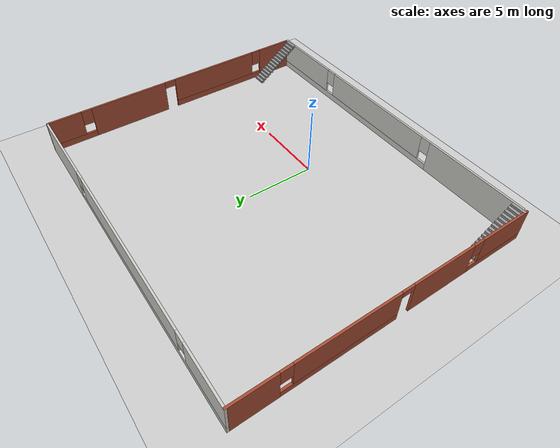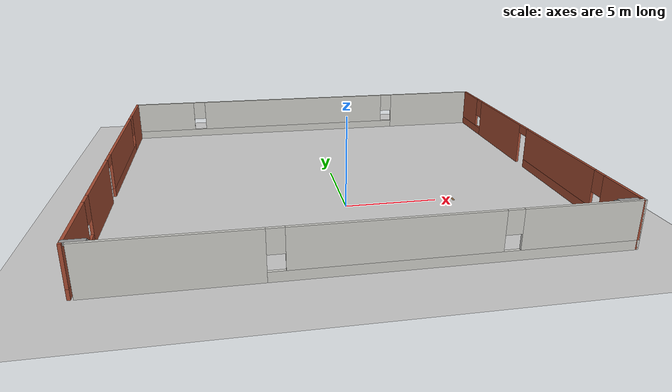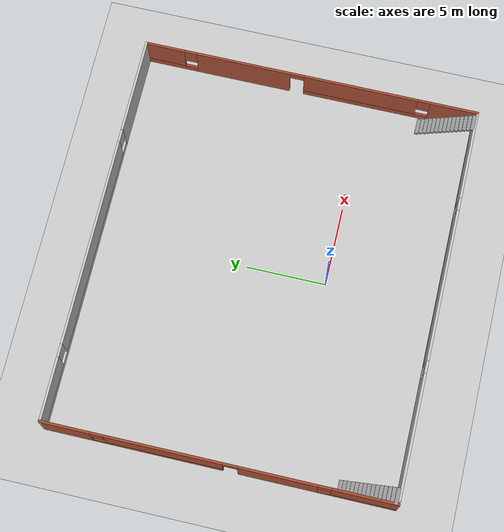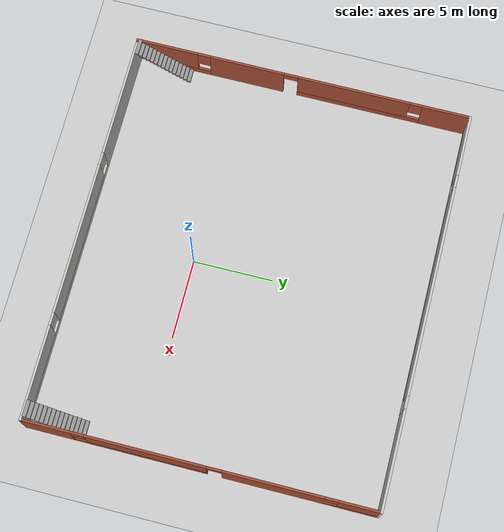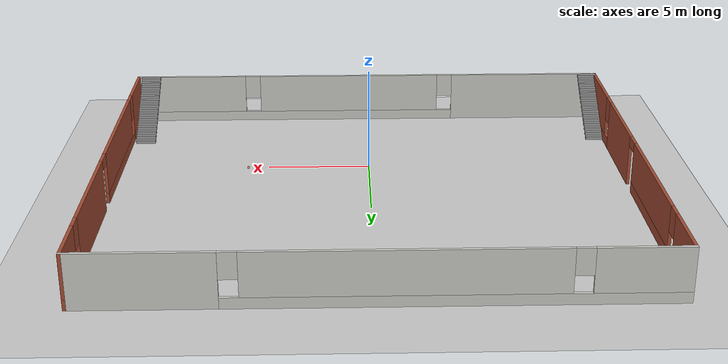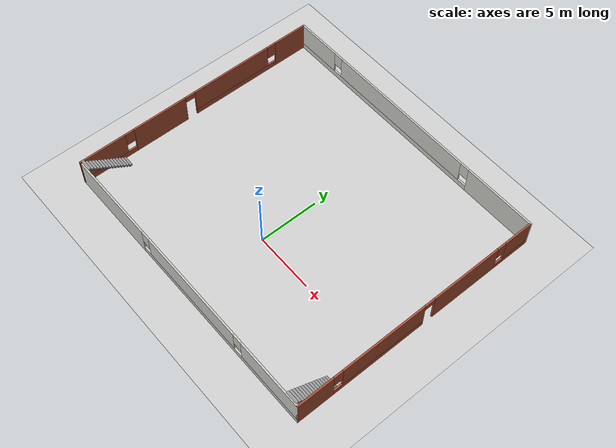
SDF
<sdf version="1.7">
 <world name="default">
  <model name="ground_plane">
   <static>1</static>
   <link name="link">
    <collision name="collision">
     <geometry><plane><normal>0 0 1</normal><size>100 100</size></plane></geometry>
     <surface><friction><ode><mu>100</mu><mu2>50</mu2></ode></friction></surface>
    </collision>
    <visual name="visual">
     <cast_shadows>0</cast_shadows>
     <geometry><plane><normal>0 0 1</normal><size>100 100</size></plane></geometry>
     <material>
      <script><uri>file://media/materials/scripts/gazebo.material</uri><name>Gazebo/Grey</name></script>
     </material>
    </visual>
   </link>
  </model>
  <model name="abbirr"><pose>0 0 0.01 0 -0 0</pose></model>
  <model name="first">
   <pose>-0.096743 3.74474 0 0 -0 0</pose>
   <link name="Stairs_0">
    <visual name="Stairs_0_Visual_0">
     <pose>-11.9778 -7.23054 0.083333 0 -0 0</pose>
     <geometry><box><size>1 0.233333 0.166667</size></box></geometry>
     <material>
      <script><uri>file://media/materials/scripts/gazebo.material</uri><name>Gazebo/Grey</name></script>
      <ambient>1 1 1 1</ambient>
     </material>
     <meta><layer>0</layer></meta>
    </visual>
    <collision name="Stairs_0_Collision_0">
     <geometry><box><size>1 0.233333 0.166667</size></box></geometry>
     <pose>-11.9778 -7.23054 0.083333 0 -0 0</pose>
    </collision>
    <visual name="Stairs_0_Visual_1">
     <pose>-11.9778 -7.46388 0.25 0 -0 0</pose>
     <geometry><box><size>1 0.233333 0.166667</size></box></geometry>
     <material>
      <script><uri>file://media/materials/scripts/gazebo.material</uri><name>Gazebo/Grey</name></script>
      <ambient>1 1 1 1</ambient>
     </material>
     <meta><layer>0</layer></meta>
    </visual>
    <collision name="Stairs_0_Collision_1">
     <geometry><box><size>1 0.233333 0.166667</size></box></geometry>
     <pose>-11.9778 -7.46388 0.25 0 -0 0</pose>
    </collision>
    <visual name="Stairs_0_Visual_2">
     <pose>-11.9778 -7.69721 0.416667 0 -0 0</pose>
     <geometry><box><size>1 0.233333 0.166667</size></box></geometry>
     <material>
      <script><uri>file://media/materials/scripts/gazebo.material</uri><name>Gazebo/Grey</name></script>
      <ambient>1 1 1 1</ambient>
     </material>
     <meta><layer>0</layer></meta>
    </visual>
    <collision name="Stairs_0_Collision_2">
     <geometry><box><size>1 0.233333 0.166667</size></box></geometry>
     <pose>-11.9778 -7.69721 0.416667 0 -0 0</pose>
    </collision>
    <visual name="Stairs_0_Visual_3">
     <pose>-11.9778 -7.93054 0.583333 0 -0 0</pose>
     <geometry><box><size>1 0.233333 0.166667</size></box></geometry>
     <material>
      <script><uri>file://media/materials/scripts/gazebo.material</uri><name>Gazebo/Grey</name></script>
      <ambient>1 1 1 1</ambient>
     </material>
     <meta><layer>0</layer></meta>
    </visual>
    <collision name="Stairs_0_Collision_3">
     <geometry><box><size>1 0.233333 0.166667</size></box></geometry>
     <pose>-11.9778 -7.93054 0.583333 0 -0 0</pose>
    </collision>
    <visual name="Stairs_0_Visual_4">
     <pose>-11.9778 -8.16388 0.75 0 -0 0</pose>
     <geometry><box><size>1 0.233333 0.166667</size></box></geometry>
     <material>
      <script><uri>file://media/materials/scripts/gazebo.material</uri><name>Gazebo/Grey</name></script>
      <ambient>1 1 1 1</ambient>
     </material>
     <meta><layer>0</layer></meta>
    </visual>
    <collision name="Stairs_0_Collision_4">
     <geometry><box><size>1 0.233333 0.166667</size></box></geometry>
     <pose>-11.9778 -8.16388 0.75 0 -0 0</pose>
    </collision>
    <visual name="Stairs_0_Visual_5">
     <pose>-11.9778 -8.39721 0.916667 0 -0 0</pose>
     <geometry><box><size>1 0.233333 0.166667</size></box></geometry>
     <material>
      <script><uri>file://media/materials/scripts/gazebo.material</uri><name>Gazebo/Grey</name></script>
      <ambient>1 1 1 1</ambient>
     </material>
     <meta><layer>0</layer></meta>
    </visual>
    <collision name="Stairs_0_Collision_5">
     <geometry><box><size>1 0.233333 0.166667</size></box></geometry>
     <pose>-11.9778 -8.39721 0.916667 0 -0 0</pose>
    </collision>
    <visual name="Stairs_0_Visual_6">
     <pose>-11.9778 -8.63054 1.08333 0 -0 0</pose>
     <geometry><box><size>1 0.233333 0.166667</size></box></geometry>
     <material>
      <script><uri>file://media/materials/scripts/gazebo.material</uri><name>Gazebo/Grey</name></script>
      <ambient>1 1 1 1</ambient>
     </material>
     <meta><layer>0</layer></meta>
    </visual>
    <collision name="Stairs_0_Collision_6">
     <geometry><box><size>1 0.233333 0.166667</size></box></geometry>
     <pose>-11.9778 -8.63054 1.08333 0 -0 0</pose>
    </collision>
    <visual name="Stairs_0_Visual_7">
     <pose>-11.9778 -8.86388 1.25 0 -0 0</pose>
     <geometry><box><size>1 0.233333 0.166667</size></box></geometry>
     <material>
      <script><uri>file://media/materials/scripts/gazebo.material</uri><name>Gazebo/Grey</name></script>
      <ambient>1 1 1 1</ambient>
     </material>
     <meta><layer>0</layer></meta>
    </visual>
    <collision name="Stairs_0_Collision_7">
     <geometry><box><size>1 0.233333 0.166667</size></box></geometry>
     <pose>-11.9778 -8.86388 1.25 0 -0 0</pose>
    </collision>
    <visual name="Stairs_0_Visual_8">
     <pose>-11.9778 -9.09721 1.41667 0 -0 0</pose>
     <geometry><box><size>1 0.233333 0.166667</size></box></geometry>
     <material>
      <script><uri>file://media/materials/scripts/gazebo.material</uri><name>Gazebo/Grey</name></script>
      <ambient>1 1 1 1</ambient>
     </material>
     <meta><layer>0</layer></meta>
    </visual>
    <collision name="Stairs_0_Collision_8">
     <geometry><box><size>1 0.233333 0.166667</size></box></geometry>
     <pose>-11.9778 -9.09721 1.41667 0 -0 0</pose>
    </collision>
    <visual name="Stairs_0_Visual_9">
     <pose>-11.9778 -9.33054 1.58333 0 -0 0</pose>
     <geometry><box><size>1 0.233333 0.166667</size></box></geometry>
     <material>
      <script><uri>file://media/materials/scripts/gazebo.material</uri><name>Gazebo/Grey</name></script>
      <ambient>1 1 1 1</ambient>
     </material>
     <meta><layer>0</layer></meta>
    </visual>
    <collision name="Stairs_0_Collision_9">
     <geometry><box><size>1 0.233333 0.166667</size></box></geometry>
     <pose>-11.9778 -9.33054 1.58333 0 -0 0</pose>
    </collision>
    <visual name="Stairs_0_Visual_10">
     <pose>-11.9778 -9.56388 1.75 0 -0 0</pose>
     <geometry><box><size>1 0.233333 0.166667</size></box></geometry>
     <material>
      <script><uri>file://media/materials/scripts/gazebo.material</uri><name>Gazebo/Grey</name></script>
      <ambient>1 1 1 1</ambient>
     </material>
     <meta><layer>0</layer></meta>
    </visual>
    <collision name="Stairs_0_Collision_10">
     <geometry><box><size>1 0.233333 0.166667</size></box></geometry>
     <pose>-11.9778 -9.56388 1.75 0 -0 0</pose>
    </collision>
    <visual name="Stairs_0_Visual_11">
     <pose>-11.9778 -9.79721 1.91667 0 -0 0</pose>
     <geometry><box><size>1 0.233333 0.166667</size></box></geometry>
     <material>
      <script><uri>file://media/materials/scripts/gazebo.material</uri><name>Gazebo/Grey</name></script>
      <ambient>1 1 1 1</ambient>
     </material>
     <meta><layer>0</layer></meta>
    </visual>
    <collision name="Stairs_0_Collision_11">
     <geometry><box><size>1 0.233333 0.166667</size></box></geometry>
     <pose>-11.9778 -9.79721 1.91667 0 -0 0</pose>
    </collision>
    <visual name="Stairs_0_Visual_12">
     <pose>-11.9778 -10.0305 2.08333 0 -0 0</pose>
     <geometry><box><size>1 0.233333 0.166667</size></box></geometry>
     <material>
      <script><uri>file://media/materials/scripts/gazebo.material</uri><name>Gazebo/Grey</name></script>
      <ambient>1 1 1 1</ambient>
     </material>
     <meta><layer>0</layer></meta>
    </visual>
    <collision name="Stairs_0_Collision_12">
     <geometry><box><size>1 0.233333 0.166667</size></box></geometry>
     <pose>-11.9778 -10.0305 2.08333 0 -0 0</pose>
    </collision>
    <visual name="Stairs_0_Visual_13">
     <pose>-11.9778 -10.2639 2.25 0 -0 0</pose>
     <geometry><box><size>1 0.233333 0.166667</size></box></geometry>
     <material>
      <script><uri>file://media/materials/scripts/gazebo.material</uri><name>Gazebo/Grey</name></script>
      <ambient>1 1 1 1</ambient>
     </material>
     <meta><layer>0</layer></meta>
    </visual>
    <collision name="Stairs_0_Collision_13">
     <geometry><box><size>1 0.233333 0.166667</size></box></geometry>
     <pose>-11.9778 -10.2639 2.25 0 -0 0</pose>
    </collision>
    <visual name="Stairs_0_Visual_14">
     <pose>-11.9778 -10.4972 2.41667 0 -0 0</pose>
     <geometry><box><size>1 0.233333 0.166667</size></box></geometry>
     <material>
      <script><uri>file://media/materials/scripts/gazebo.material</uri><name>Gazebo/Grey</name></script>
      <ambient>1 1 1 1</ambient>
     </material>
     <meta><layer>0</layer></meta>
    </visual>
    <collision name="Stairs_0_Collision_14">
     <geometry><box><size>1 0.233333 0.166667</size></box></geometry>
     <pose>-11.9778 -10.4972 2.41667 0 -0 0</pose>
    </collision>
   </link>
   <link name="Stairs_1">
    <visual name="Stairs_1_Visual_0">
     <pose>11.7296 -7.26113 0.083333 0 -0 0</pose>
     <geometry><box><size>1 0.233333 0.166667</size></box></geometry>
     <material>
      <script><uri>file://media/materials/scripts/gazebo.material</uri><name>Gazebo/Grey</name></script>
      <ambient>1 1 1 1</ambient>
     </material>
     <meta><layer>0</layer></meta>
    </visual>
    <collision name="Stairs_1_Collision_0">
     <geometry><box><size>1 0.233333 0.166667</size></box></geometry>
     <pose>11.7296 -7.26113 0.083333 0 -0 0</pose>
    </collision>
    <visual name="Stairs_1_Visual_1">
     <pose>11.7296 -7.49447 0.25 0 -0 0</pose>
     <geometry><box><size>1 0.233333 0.166667</size></box></geometry>
     <material>
      <script><uri>file://media/materials/scripts/gazebo.material</uri><name>Gazebo/Grey</name></script>
      <ambient>1 1 1 1</ambient>
     </material>
     <meta><layer>0</layer></meta>
    </visual>
    <collision name="Stairs_1_Collision_1">
     <geometry><box><size>1 0.233333 0.166667</size></box></geometry>
     <pose>11.7296 -7.49447 0.25 0 -0 0</pose>
    </collision>
    <visual name="Stairs_1_Visual_2">
     <pose>11.7296 -7.7278 0.416667 0 -0 0</pose>
     <geometry><box><size>1 0.233333 0.166667</size></box></geometry>
     <material>
      <script><uri>file://media/materials/scripts/gazebo.material</uri><name>Gazebo/Grey</name></script>
      <ambient>1 1 1 1</ambient>
     </material>
     <meta><layer>0</layer></meta>
    </visual>
    <collision name="Stairs_1_Collision_2">
     <geometry><box><size>1 0.233333 0.166667</size></box></geometry>
     <pose>11.7296 -7.7278 0.416667 0 -0 0</pose>
    </collision>
    <visual name="Stairs_1_Visual_3">
     <pose>11.7296 -7.96113 0.583333 0 -0 0</pose>
     <geometry><box><size>1 0.233333 0.166667</size></box></geometry>
     <material>
      <script><uri>file://media/materials/scripts/gazebo.material</uri><name>Gazebo/Grey</name></script>
      <ambient>1 1 1 1</ambient>
     </material>
     <meta><layer>0</layer></meta>
    </visual>
    <collision name="Stairs_1_Collision_3">
     <geometry><box><size>1 0.233333 0.166667</size></box></geometry>
     <pose>11.7296 -7.96113 0.583333 0 -0 0</pose>
    </collision>
    <visual name="Stairs_1_Visual_4">
     <pose>11.7296 -8.19447 0.75 0 -0 0</pose>
     <geometry><box><size>1 0.233333 0.166667</size></box></geometry>
     <material>
      <script><uri>file://media/materials/scripts/gazebo.material</uri><name>Gazebo/Grey</name></script>
      <ambient>1 1 1 1</ambient>
     </material>
     <meta><layer>0</layer></meta>
    </visual>
    <collision name="Stairs_1_Collision_4">
     <geometry><box><size>1 0.233333 0.166667</size></box></geometry>
     <pose>11.7296 -8.19447 0.75 0 -0 0</pose>
    </collision>
    <visual name="Stairs_1_Visual_5">
     <pose>11.7296 -8.4278 0.916667 0 -0 0</pose>
     <geometry><box><size>1 0.233333 0.166667</size></box></geometry>
     <material>
      <script><uri>file://media/materials/scripts/gazebo.material</uri><name>Gazebo/Grey</name></script>
      <ambient>1 1 1 1</ambient>
     </material>
     <meta><layer>0</layer></meta>
    </visual>
    <collision name="Stairs_1_Collision_5">
     <geometry><box><size>1 0.233333 0.166667</size></box></geometry>
     <pose>11.7296 -8.4278 0.916667 0 -0 0</pose>
    </collision>
    <visual name="Stairs_1_Visual_6">
     <pose>11.7296 -8.66113 1.08333 0 -0 0</pose>
     <geometry><box><size>1 0.233333 0.166667</size></box></geometry>
     <material>
      <script><uri>file://media/materials/scripts/gazebo.material</uri><name>Gazebo/Grey</name></script>
      <ambient>1 1 1 1</ambient>
     </material>
     <meta><layer>0</layer></meta>
    </visual>
    <collision name="Stairs_1_Collision_6">
     <geometry><box><size>1 0.233333 0.166667</size></box></geometry>
     <pose>11.7296 -8.66113 1.08333 0 -0 0</pose>
    </collision>
    <visual name="Stairs_1_Visual_7">
     <pose>11.7296 -8.89447 1.25 0 -0 0</pose>
     <geometry><box><size>1 0.233333 0.166667</size></box></geometry>
     <material>
      <script><uri>file://media/materials/scripts/gazebo.material</uri><name>Gazebo/Grey</name></script>
      <ambient>1 1 1 1</ambient>
     </material>
     <meta><layer>0</layer></meta>
    </visual>
    <collision name="Stairs_1_Collision_7">
     <geometry><box><size>1 0.233333 0.166667</size></box></geometry>
     <pose>11.7296 -8.89447 1.25 0 -0 0</pose>
    </collision>
    <visual name="Stairs_1_Visual_8">
     <pose>11.7296 -9.1278 1.41667 0 -0 0</pose>
     <geometry><box><size>1 0.233333 0.166667</size></box></geometry>
     <material>
      <script><uri>file://media/materials/scripts/gazebo.material</uri><name>Gazebo/Grey</name></script>
      <ambient>1 1 1 1</ambient>
     </material>
     <meta><layer>0</layer></meta>
    </visual>
    <collision name="Stairs_1_Collision_8">
     <geometry><box><size>1 0.233333 0.166667</size></box></geometry>
     <pose>11.7296 -9.1278 1.41667 0 -0 0</pose>
    </collision>
    <visual name="Stairs_1_Visual_9">
     <pose>11.7296 -9.36113 1.58333 0 -0 0</pose>
     <geometry><box><size>1 0.233333 0.166667</size></box></geometry>
     <material>
      <script><uri>file://media/materials/scripts/gazebo.material</uri><name>Gazebo/Grey</name></script>
      <ambient>1 1 1 1</ambient>
     </material>
     <meta><layer>0</layer></meta>
    </visual>
    <collision name="Stairs_1_Collision_9">
     <geometry><box><size>1 0.233333 0.166667</size></box></geometry>
     <pose>11.7296 -9.36113 1.58333 0 -0 0</pose>
    </collision>
    <visual name="Stairs_1_Visual_10">
     <pose>11.7296 -9.59447 1.75 0 -0 0</pose>
     <geometry><box><size>1 0.233333 0.166667</size></box></geometry>
     <material>
      <script><uri>file://media/materials/scripts/gazebo.material</uri><name>Gazebo/Grey</name></script>
      <ambient>1 1 1 1</ambient>
     </material>
     <meta><layer>0</layer></meta>
    </visual>
    <collision name="Stairs_1_Collision_10">
     <geometry><box><size>1 0.233333 0.166667</size></box></geometry>
     <pose>11.7296 -9.59447 1.75 0 -0 0</pose>
    </collision>
    <visual name="Stairs_1_Visual_11">
     <pose>11.7296 -9.8278 1.91667 0 -0 0</pose>
     <geometry><box><size>1 0.233333 0.166667</size></box></geometry>
     <material>
      <script><uri>file://media/materials/scripts/gazebo.material</uri><name>Gazebo/Grey</name></script>
      <ambient>1 1 1 1</ambient>
     </material>
     <meta><layer>0</layer></meta>
    </visual>
    <collision name="Stairs_1_Collision_11">
     <geometry><box><size>1 0.233333 0.166667</size></box></geometry>
     <pose>11.7296 -9.8278 1.91667 0 -0 0</pose>
    </collision>
    <visual name="Stairs_1_Visual_12">
     <pose>11.7296 -10.0611 2.08333 0 -0 0</pose>
     <geometry><box><size>1 0.233333 0.166667</size></box></geometry>
     <material>
      <script><uri>file://media/materials/scripts/gazebo.material</uri><name>Gazebo/Grey</name></script>
      <ambient>1 1 1 1</ambient>
     </material>
     <meta><layer>0</layer></meta>
    </visual>
    <collision name="Stairs_1_Collision_12">
     <geometry><box><size>1 0.233333 0.166667</size></box></geometry>
     <pose>11.7296 -10.0611 2.08333 0 -0 0</pose>
    </collision>
    <visual name="Stairs_1_Visual_13">
     <pose>11.7296 -10.2945 2.25 0 -0 0</pose>
     <geometry><box><size>1 0.233333 0.166667</size></box></geometry>
     <material>
      <script><uri>file://media/materials/scripts/gazebo.material</uri><name>Gazebo/Grey</name></script>
      <ambient>1 1 1 1</ambient>
     </material>
     <meta><layer>0</layer></meta>
    </visual>
    <collision name="Stairs_1_Collision_13">
     <geometry><box><size>1 0.233333 0.166667</size></box></geometry>
     <pose>11.7296 -10.2945 2.25 0 -0 0</pose>
    </collision>
    <visual name="Stairs_1_Visual_14">
     <pose>11.7296 -10.5278 2.41667 0 -0 0</pose>
     <geometry><box><size>1 0.233333 0.166667</size></box></geometry>
     <material>
      <script><uri>file://media/materials/scripts/gazebo.material</uri><name>Gazebo/Grey</name></script>
      <ambient>1 1 1 1</ambient>
     </material>
     <meta><layer>0</layer></meta>
    </visual>
    <collision name="Stairs_1_Collision_14">
     <geometry><box><size>1 0.233333 0.166667</size></box></geometry>
     <pose>11.7296 -10.5278 2.41667 0 -0 0</pose>
    </collision>
   </link>
   <link name="Wall_0">
    <pose>0.125 -10.675 0 0 -0 0</pose>
    <visual name="Wall_0_Visual_0">
     <pose>-8.53865 0 1.25 0 -0 0</pose>
     <geometry><box><size>7.67271 0.15 2.5</size></box></geometry>
     <material>
      <script><uri>file://media/materials/scripts/gazebo.material</uri><name>Gazebo/CeilingTiled</name></script>
      <ambient>1 1 1 1</ambient>
     </material>
     <meta><layer>0</layer></meta>
    </visual>
    <collision name="Wall_0_Collision_0">
     <geometry><box><size>7.67271 0.15 2.5</size></box></geometry>
     <pose>-8.53865 0 1.25 0 -0 0</pose>
    </collision>
    <visual name="Wall_0_Visual_1">
     <pose>3.83635 0 0.25 0 -0 0</pose>
     <geometry><box><size>17.0773 0.15 0.5</size></box></geometry>
     <material>
      <script><uri>file://media/materials/scripts/gazebo.material</uri><name>Gazebo/CeilingTiled</name></script>
      <ambient>1 1 1 1</ambient>
     </material>
     <meta><layer>0</layer></meta>
    </visual>
    <collision name="Wall_0_Collision_1">
     <geometry><box><size>17.0773 0.15 0.5</size></box></geometry>
     <pose>3.83635 0 0.25 0 -0 0</pose>
    </collision>
    <visual name="Wall_0_Visual_2">
     <pose>0.913342 0 1.5 0 -0 0</pose>
     <geometry><box><size>9.63127 0.15 2</size></box></geometry>
     <material>
      <script><uri>file://media/materials/scripts/gazebo.material</uri><name>Gazebo/CeilingTiled</name></script>
      <ambient>1 1 1 1</ambient>
     </material>
     <meta><layer>0</layer></meta>
    </visual>
    <collision name="Wall_0_Collision_2">
     <geometry><box><size>9.63127 0.15 2</size></box></geometry>
     <pose>0.913342 0 1.5 0 -0 0</pose>
    </collision>
    <visual name="Wall_0_Visual_3">
     <pose>9.45199 0 1.5 0 -0 0</pose>
     <geometry><box><size>5.84602 0.15 2</size></box></geometry>
     <material>
      <script><uri>file://media/materials/scripts/gazebo.material</uri><name>Gazebo/CeilingTiled</name></script>
      <ambient>1 1 1 1</ambient>
     </material>
     <meta><layer>0</layer></meta>
    </visual>
    <collision name="Wall_0_Collision_3">
     <geometry><box><size>5.84602 0.15 2</size></box></geometry>
     <pose>9.45199 0 1.5 0 -0 0</pose>
    </collision>
    <visual name="Wall_0_Visual_4">
     <pose>-4.30229 0 1.9 0 -0 0</pose>
     <geometry><box><size>0.8 0.15 1.2</size></box></geometry>
     <material>
      <script><uri>file://media/materials/scripts/gazebo.material</uri><name>Gazebo/CeilingTiled</name></script>
      <ambient>1 1 1 1</ambient>
     </material>
     <meta><layer>0</layer></meta>
    </visual>
    <collision name="Wall_0_Collision_4">
     <geometry><box><size>0.8 0.15 1.2</size></box></geometry>
     <pose>-4.30229 0 1.9 0 -0 0</pose>
    </collision>
    <visual name="Wall_0_Visual_5">
     <pose>6.12898 0 1.9 0 -0 0</pose>
     <geometry><box><size>0.8 0.15 1.2</size></box></geometry>
     <material>
      <script><uri>file://media/materials/scripts/gazebo.material</uri><name>Gazebo/CeilingTiled</name></script>
      <ambient>1 1 1 1</ambient>
     </material>
     <meta><layer>0</layer></meta>
    </visual>
    <collision name="Wall_0_Collision_5">
     <geometry><box><size>0.8 0.15 1.2</size></box></geometry>
     <pose>6.12898 0 1.9 0 -0 0</pose>
    </collision>
   </link>
   <link name="Wall_1">
    <pose>12.425 0 0 0 -0 1.5708</pose>
    <visual name="Wall_1_Visual_0">
     <pose>-9.21159 0 1.25 0 -0 0</pose>
     <geometry><box><size>3.07682 0.15 2.5</size></box></geometry>
     <material>
      <script><uri>file://media/materials/scripts/gazebo.material</uri><name>Gazebo/Bricks</name></script>
      <ambient>1 1 1 1</ambient>
     </material>
     <meta><layer>0</layer></meta>
    </visual>
    <collision name="Wall_1_Collision_0">
     <geometry><box><size>3.07682 0.15 2.5</size></box></geometry>
     <pose>-9.21159 0 1.25 0 -0 0</pose>
    </collision>
    <visual name="Wall_1_Visual_1">
     <pose>4.34551 0 1.25 0 -0 0</pose>
     <geometry><box><size>6.06339 0.15 2.5</size></box></geometry>
     <material>
      <script><uri>file://media/materials/scripts/gazebo.material</uri><name>Gazebo/Bricks</name></script>
      <ambient>1 1 1 1</ambient>
     </material>
     <meta><layer>0</layer></meta>
    </visual>
    <collision name="Wall_1_Collision_1">
     <geometry><box><size>6.06339 0.15 2.5</size></box></geometry>
     <pose>4.34551 0 1.25 0 -0 0</pose>
    </collision>
    <visual name="Wall_1_Visual_2">
     <pose>-3.62968 0 0.25 0 -0 0</pose>
     <geometry><box><size>8.087 0.15 0.5</size></box></geometry>
     <material>
      <script><uri>file://media/materials/scripts/gazebo.material</uri><name>Gazebo/Bricks</name></script>
      <ambient>1 1 1 1</ambient>
     </material>
     <meta><layer>0</layer></meta>
    </visual>
    <collision name="Wall_1_Collision_2">
     <geometry><box><size>8.087 0.15 0.5</size></box></geometry>
     <pose>-3.62968 0 0.25 0 -0 0</pose>
    </collision>
    <visual name="Wall_1_Visual_3">
     <pose>9.0636 0 0.25 0 -0 0</pose>
     <geometry><box><size>3.37279 0.15 0.5</size></box></geometry>
     <material>
      <script><uri>file://media/materials/scripts/gazebo.material</uri><name>Gazebo/Bricks</name></script>
      <ambient>1 1 1 1</ambient>
     </material>
     <meta><layer>0</layer></meta>
    </visual>
    <collision name="Wall_1_Collision_3">
     <geometry><box><size>3.37279 0.15 0.5</size></box></geometry>
     <pose>9.0636 0 0.25 0 -0 0</pose>
    </collision>
    <visual name="Wall_1_Visual_4">
     <pose>-3.22968 0 1.5 0 -0 0</pose>
     <geometry><box><size>7.287 0.15 2</size></box></geometry>
     <material>
      <script><uri>file://media/materials/scripts/gazebo.material</uri><name>Gazebo/Bricks</name></script>
      <ambient>1 1 1 1</ambient>
     </material>
     <meta><layer>0</layer></meta>
    </visual>
    <collision name="Wall_1_Collision_4">
     <geometry><box><size>7.287 0.15 2</size></box></geometry>
     <pose>-3.22968 0 1.5 0 -0 0</pose>
    </collision>
    <visual name="Wall_1_Visual_5">
     <pose>-3.22968 0 1.5 0 -0 0</pose>
     <geometry><box><size>7.287 0.15 2</size></box></geometry>
     <material>
      <script><uri>file://media/materials/scripts/gazebo.material</uri><name>Gazebo/Bricks</name></script>
      <ambient>1 1 1 1</ambient>
     </material>
     <meta><layer>0</layer></meta>
    </visual>
    <collision name="Wall_1_Collision_5">
     <geometry><box><size>7.287 0.15 2</size></box></geometry>
     <pose>-3.22968 0 1.5 0 -0 0</pose>
    </collision>
    <visual name="Wall_1_Visual_6">
     <pose>9.4636 0 1.5 0 -0 0</pose>
     <geometry><box><size>2.57279 0.15 2</size></box></geometry>
     <material>
      <script><uri>file://media/materials/scripts/gazebo.material</uri><name>Gazebo/Bricks</name></script>
      <ambient>1 1 1 1</ambient>
     </material>
     <meta><layer>0</layer></meta>
    </visual>
    <collision name="Wall_1_Collision_6">
     <geometry><box><size>2.57279 0.15 2</size></box></geometry>
     <pose>9.4636 0 1.5 0 -0 0</pose>
    </collision>
    <visual name="Wall_1_Visual_7">
     <pose>-7.27318 0 1.9 0 -0 0</pose>
     <geometry><box><size>0.8 0.15 1.2</size></box></geometry>
     <material>
      <script><uri>file://media/materials/scripts/gazebo.material</uri><name>Gazebo/Bricks</name></script>
      <ambient>1 1 1 1</ambient>
     </material>
     <meta><layer>0</layer></meta>
    </visual>
    <collision name="Wall_1_Collision_7">
     <geometry><box><size>0.8 0.15 1.2</size></box></geometry>
     <pose>-7.27318 0 1.9 0 -0 0</pose>
    </collision>
    <visual name="Wall_1_Visual_8">
     <pose>7.77721 0 1.9 0 -0 0</pose>
     <geometry><box><size>0.8 0.15 1.2</size></box></geometry>
     <material>
      <script><uri>file://media/materials/scripts/gazebo.material</uri><name>Gazebo/Bricks</name></script>
      <ambient>1 1 1 1</ambient>
     </material>
     <meta><layer>0</layer></meta>
    </visual>
    <collision name="Wall_1_Collision_8">
     <geometry><box><size>0.8 0.15 1.2</size></box></geometry>
     <pose>7.77721 0 1.9 0 -0 0</pose>
    </collision>
    <visual name="Wall_1_Visual_9">
     <pose>0.863816 0 2.25 0 -0 0</pose>
     <geometry><box><size>0.9 0.15 0.5</size></box></geometry>
     <material>
      <script><uri>file://media/materials/scripts/gazebo.material</uri><name>Gazebo/Bricks</name></script>
      <ambient>1 1 1 1</ambient>
     </material>
     <meta><layer>0</layer></meta>
    </visual>
    <collision name="Wall_1_Collision_9">
     <geometry><box><size>0.9 0.15 0.5</size></box></geometry>
     <pose>0.863816 0 2.25 0 -0 0</pose>
    </collision>
    <visual name="Wall_1_Visual_10">
     <pose>0.863816 0 2.25 0 -0 0</pose>
     <geometry><box><size>0.9 0.15 0.5</size></box></geometry>
     <material>
      <script><uri>file://media/materials/scripts/gazebo.material</uri><name>Gazebo/Bricks</name></script>
      <ambient>1 1 1 1</ambient>
     </material>
     <meta><layer>0</layer></meta>
    </visual>
    <collision name="Wall_1_Collision_10">
     <geometry><box><size>0.9 0.15 0.5</size></box></geometry>
     <pose>0.863816 0 2.25 0 -0 0</pose>
    </collision>
   </link>
   <link name="Wall_2">
    <pose>-0 10.675 0 0 -0 3.14159</pose>
    <visual name="Wall_2_Visual_0">
     <pose>-9.42404 0 1.25 0 -0 0</pose>
     <geometry><box><size>6.15193 0.15 2.5</size></box></geometry>
     <material>
      <script><uri>file://media/materials/scripts/gazebo.material</uri><name>Gazebo/CeilingTiled</name></script>
      <ambient>1 1 1 1</ambient>
     </material>
     <meta><layer>0</layer></meta>
    </visual>
    <collision name="Wall_2_Collision_0">
     <geometry><box><size>6.15193 0.15 2.5</size></box></geometry>
     <pose>-9.42404 0 1.25 0 -0 0</pose>
    </collision>
    <visual name="Wall_2_Visual_1">
     <pose>3.07596 0 0.25 0 -0 0</pose>
     <geometry><box><size>18.8481 0.15 0.5</size></box></geometry>
     <material>
      <script><uri>file://media/materials/scripts/gazebo.material</uri><name>Gazebo/CeilingTiled</name></script>
      <ambient>1 1 1 1</ambient>
     </material>
     <meta><layer>0</layer></meta>
    </visual>
    <collision name="Wall_2_Collision_1">
     <geometry><box><size>18.8481 0.15 0.5</size></box></geometry>
     <pose>3.07596 0 0.25 0 -0 0</pose>
    </collision>
    <visual name="Wall_2_Visual_2">
     <pose>1.07238 0 1.5 0 -0 0</pose>
     <geometry><box><size>13.2409 0.15 2</size></box></geometry>
     <material>
      <script><uri>file://media/materials/scripts/gazebo.material</uri><name>Gazebo/CeilingTiled</name></script>
      <ambient>1 1 1 1</ambient>
     </material>
     <meta><layer>0</layer></meta>
    </visual>
    <collision name="Wall_2_Collision_2">
     <geometry><box><size>13.2409 0.15 2</size></box></geometry>
     <pose>1.07238 0 1.5 0 -0 0</pose>
    </collision>
    <visual name="Wall_2_Visual_3">
     <pose>10.4964 0 1.5 0 -0 0</pose>
     <geometry><box><size>4.00716 0.15 2</size></box></geometry>
     <material>
      <script><uri>file://media/materials/scripts/gazebo.material</uri><name>Gazebo/CeilingTiled</name></script>
      <ambient>1 1 1 1</ambient>
     </material>
     <meta><layer>0</layer></meta>
    </visual>
    <collision name="Wall_2_Collision_3">
     <geometry><box><size>4.00716 0.15 2</size></box></geometry>
     <pose>10.4964 0 1.5 0 -0 0</pose>
    </collision>
    <visual name="Wall_2_Visual_4">
     <pose>-5.94807 0 1.9 0 -0 0</pose>
     <geometry><box><size>0.8 0.15 1.2</size></box></geometry>
     <material>
      <script><uri>file://media/materials/scripts/gazebo.material</uri><name>Gazebo/CeilingTiled</name></script>
      <ambient>1 1 1 1</ambient>
     </material>
     <meta><layer>0</layer></meta>
    </visual>
    <collision name="Wall_2_Collision_4">
     <geometry><box><size>0.8 0.15 1.2</size></box></geometry>
     <pose>-5.94807 0 1.9 0 -0 0</pose>
    </collision>
    <visual name="Wall_2_Visual_5">
     <pose>8.09284 0 1.9 0 -0 0</pose>
     <geometry><box><size>0.8 0.15 1.2</size></box></geometry>
     <material>
      <script><uri>file://media/materials/scripts/gazebo.material</uri><name>Gazebo/CeilingTiled</name></script>
      <ambient>1 1 1 1</ambient>
     </material>
     <meta><layer>0</layer></meta>
    </visual>
    <collision name="Wall_2_Collision_5">
     <geometry><box><size>0.8 0.15 1.2</size></box></geometry>
     <pose>8.09284 0 1.9 0 -0 0</pose>
    </collision>
   </link>
   <link name="Wall_3">
    <pose>-12.425 0 0 0 -0 -1.5708</pose>
    <visual name="Wall_3_Visual_0">
     <pose>-9.20359 0 1.25 0 -0 0</pose>
     <geometry><box><size>3.09283 0.15 2.5</size></box></geometry>
     <material>
      <script><uri>file://media/materials/scripts/gazebo.material</uri><name>Gazebo/Bricks</name></script>
      <ambient>1 1 1 1</ambient>
     </material>
     <meta><layer>0</layer></meta>
    </visual>
    <collision name="Wall_3_Collision_0">
     <geometry><box><size>3.09283 0.15 2.5</size></box></geometry>
     <pose>-9.20359 0 1.25 0 -0 0</pose>
    </collision>
    <visual name="Wall_3_Visual_1">
     <pose>3.56618 0 1.25 0 -0 0</pose>
     <geometry><box><size>4.7786 0.15 2.5</size></box></geometry>
     <material>
      <script><uri>file://media/materials/scripts/gazebo.material</uri><name>Gazebo/Bricks</name></script>
      <ambient>1 1 1 1</ambient>
     </material>
     <meta><layer>0</layer></meta>
    </visual>
    <collision name="Wall_3_Collision_1">
     <geometry><box><size>4.7786 0.15 2.5</size></box></geometry>
     <pose>3.56618 0 1.25 0 -0 0</pose>
    </collision>
    <visual name="Wall_3_Visual_2">
     <pose>-3.69015 0 0.25 0 -0 0</pose>
     <geometry><box><size>7.93405 0.15 0.5</size></box></geometry>
     <material>
      <script><uri>file://media/materials/scripts/gazebo.material</uri><name>Gazebo/Bricks</name></script>
      <ambient>1 1 1 1</ambient>
     </material>
     <meta><layer>0</layer></meta>
    </visual>
    <collision name="Wall_3_Collision_2">
     <geometry><box><size>7.93405 0.15 0.5</size></box></geometry>
     <pose>-3.69015 0 0.25 0 -0 0</pose>
    </collision>
    <visual name="Wall_3_Visual_3">
     <pose>8.35274 0 0.25 0 -0 0</pose>
     <geometry><box><size>4.79452 0.15 0.5</size></box></geometry>
     <material>
      <script><uri>file://media/materials/scripts/gazebo.material</uri><name>Gazebo/Bricks</name></script>
      <ambient>1 1 1 1</ambient>
     </material>
     <meta><layer>0</layer></meta>
    </visual>
    <collision name="Wall_3_Collision_3">
     <geometry><box><size>4.79452 0.15 0.5</size></box></geometry>
     <pose>8.35274 0 0.25 0 -0 0</pose>
    </collision>
    <visual name="Wall_3_Visual_4">
     <pose>-3.29015 0 1.5 0 -0 0</pose>
     <geometry><box><size>7.13405 0.15 2</size></box></geometry>
     <material>
      <script><uri>file://media/materials/scripts/gazebo.material</uri><name>Gazebo/Bricks</name></script>
      <ambient>1 1 1 1</ambient>
     </material>
     <meta><layer>0</layer></meta>
    </visual>
    <collision name="Wall_3_Collision_4">
     <geometry><box><size>7.13405 0.15 2</size></box></geometry>
     <pose>-3.29015 0 1.5 0 -0 0</pose>
    </collision>
    <visual name="Wall_3_Visual_5">
     <pose>-3.29015 0 1.5 0 -0 0</pose>
     <geometry><box><size>7.13405 0.15 2</size></box></geometry>
     <material>
      <script><uri>file://media/materials/scripts/gazebo.material</uri><name>Gazebo/Bricks</name></script>
      <ambient>1 1 1 1</ambient>
     </material>
     <meta><layer>0</layer></meta>
    </visual>
    <collision name="Wall_3_Collision_5">
     <geometry><box><size>7.13405 0.15 2</size></box></geometry>
     <pose>-3.29015 0 1.5 0 -0 0</pose>
    </collision>
    <visual name="Wall_3_Visual_6">
     <pose>8.75274 0 1.5 0 -0 0</pose>
     <geometry><box><size>3.99452 0.15 2</size></box></geometry>
     <material>
      <script><uri>file://media/materials/scripts/gazebo.material</uri><name>Gazebo/Bricks</name></script>
      <ambient>1 1 1 1</ambient>
     </material>
     <meta><layer>0</layer></meta>
    </visual>
    <collision name="Wall_3_Collision_6">
     <geometry><box><size>3.99452 0.15 2</size></box></geometry>
     <pose>8.75274 0 1.5 0 -0 0</pose>
    </collision>
    <visual name="Wall_3_Visual_7">
     <pose>-7.25717 0 1.9 0 -0 0</pose>
     <geometry><box><size>0.8 0.15 1.2</size></box></geometry>
     <material>
      <script><uri>file://media/materials/scripts/gazebo.material</uri><name>Gazebo/Bricks</name></script>
      <ambient>1 1 1 1</ambient>
     </material>
     <meta><layer>0</layer></meta>
    </visual>
    <collision name="Wall_3_Collision_7">
     <geometry><box><size>0.8 0.15 1.2</size></box></geometry>
     <pose>-7.25717 0 1.9 0 -0 0</pose>
    </collision>
    <visual name="Wall_3_Visual_8">
     <pose>6.35548 0 1.9 0 -0 0</pose>
     <geometry><box><size>0.8 0.15 1.2</size></box></geometry>
     <material>
      <script><uri>file://media/materials/scripts/gazebo.material</uri><name>Gazebo/Bricks</name></script>
      <ambient>1 1 1 1</ambient>
     </material>
     <meta><layer>0</layer></meta>
    </visual>
    <collision name="Wall_3_Collision_8">
     <geometry><box><size>0.8 0.15 1.2</size></box></geometry>
     <pose>6.35548 0 1.9 0 -0 0</pose>
    </collision>
    <visual name="Wall_3_Visual_9">
     <pose>0.726876 0 2.25 0 -0 0</pose>
     <geometry><box><size>0.9 0.15 0.5</size></box></geometry>
     <material>
      <script><uri>file://media/materials/scripts/gazebo.material</uri><name>Gazebo/Bricks</name></script>
      <ambient>1 1 1 1</ambient>
     </material>
     <meta><layer>0</layer></meta>
    </visual>
    <collision name="Wall_3_Collision_9">
     <geometry><box><size>0.9 0.15 0.5</size></box></geometry>
     <pose>0.726876 0 2.25 0 -0 0</pose>
    </collision>
    <visual name="Wall_3_Visual_10">
     <pose>0.726876 0 2.25 0 -0 0</pose>
     <geometry><box><size>0.9 0.15 0.5</size></box></geometry>
     <material>
      <script><uri>file://media/materials/scripts/gazebo.material</uri><name>Gazebo/Bricks</name></script>
      <ambient>1 1 1 1</ambient>
     </material>
     <meta><layer>0</layer></meta>
    </visual>
    <collision name="Wall_3_Collision_10">
     <geometry><box><size>0.9 0.15 0.5</size></box></geometry>
     <pose>0.726876 0 2.25 0 -0 0</pose>
    </collision>
   </link>
   <static>1</static>
  </model>
  <model name="wooden_board">
   <link name="base">
    <pose>0 0 0.00523 0 -0 0</pose>
    <inertial>
     <mass>0.2765</mass>
     <inertia>
      <ixx>0.0025148</ixx>
      <ixy>0</ixy>
      <ixz>0</ixz>
      <iyy>0.00024037</iyy>
      <iyz>0</iyz>
      <izz>0.00275013</izz>
     </inertia>
    </inertial>
    <collision name="collision">
     <geometry><box><size>0.1016 0.3302 0.01046</size></box></geometry>
     <surface>
      <contact>
       <poissons_ratio>0.347</poissons_ratio>
       <elastic_modulus>8.8e+09</elastic_modulus>
       <ode><kp>100000</kp><kd>100</kd><max_vel>100</max_vel><min_depth>0.001</min_depth></ode>
      </contact>
      <friction>
       <torsional>
        <coefficient>1</coefficient>
        <use_patch_radius>0</use_patch_radius>
        <surface_radius>0.01</surface_radius>
       </torsional>
      </friction>
     </surface>
    </collision>
    <visual name="visual">
     <geometry><box><size>0.1016 0.3302 0.01046</size></box></geometry>
     <material>
      <script><uri>file://media/materials/scripts/gazebo.material</uri><name>Gazebo/Wood</name></script>
     </material>
    </visual>
    <visual name="tee_nut_1">
     <pose>0 -0.116 0 0 -0 0</pose>
     <geometry><cylinder><radius>0.00635</radius><length>0.0105646</length></cylinder></geometry>
     <material>
      <script><uri>file://media/materials/scripts/gazebo.material</uri><name>Gazebo/Grey</name></script>
     </material>
    </visual>
    <visual name="tee_nut_2">
     <pose>0 -0.038 0 0 -0 0</pose>
     <geometry><cylinder><radius>0.00635</radius><length>0.0105646</length></cylinder></geometry>
     <material>
      <script><uri>file://media/materials/scripts/gazebo.material</uri><name>Gazebo/Grey</name></script>
     </material>
    </visual>
    <visual name="tee_nut_3">
     <pose>0 0.038 0 0 -0 0</pose>
     <geometry><cylinder><radius>0.00635</radius><length>0.0105646</length></cylinder></geometry>
     <material>
      <script><uri>file://media/materials/scripts/gazebo.material</uri><name>Gazebo/Grey</name></script>
     </material>
    </visual>
    <visual name="tee_nut_4">
     <pose>0 0.116 0 0 -0 0</pose>
     <geometry><cylinder><radius>0.00635</radius><length>0.0105646</length></cylinder></geometry>
     <material>
      <script><uri>file://media/materials/scripts/gazebo.material</uri><name>Gazebo/Grey</name></script>
     </material>
    </visual>
   </link>
   <pose>6.02912 -0.018449 -0.001007 0 -0 0</pose>
  </model>
 </world>
</sdf>
